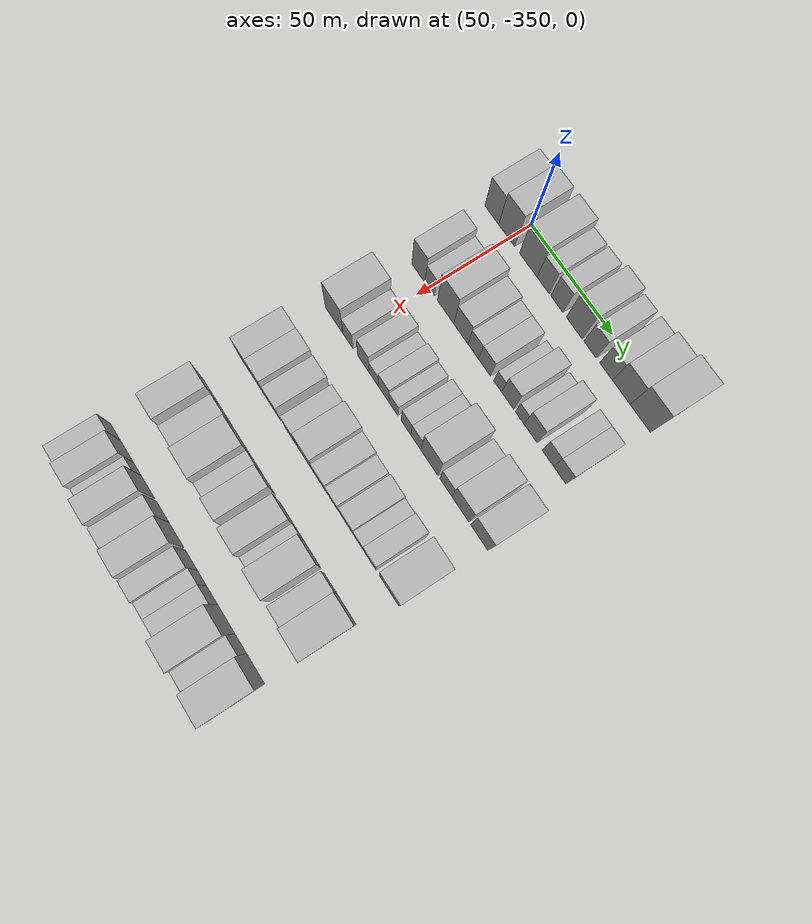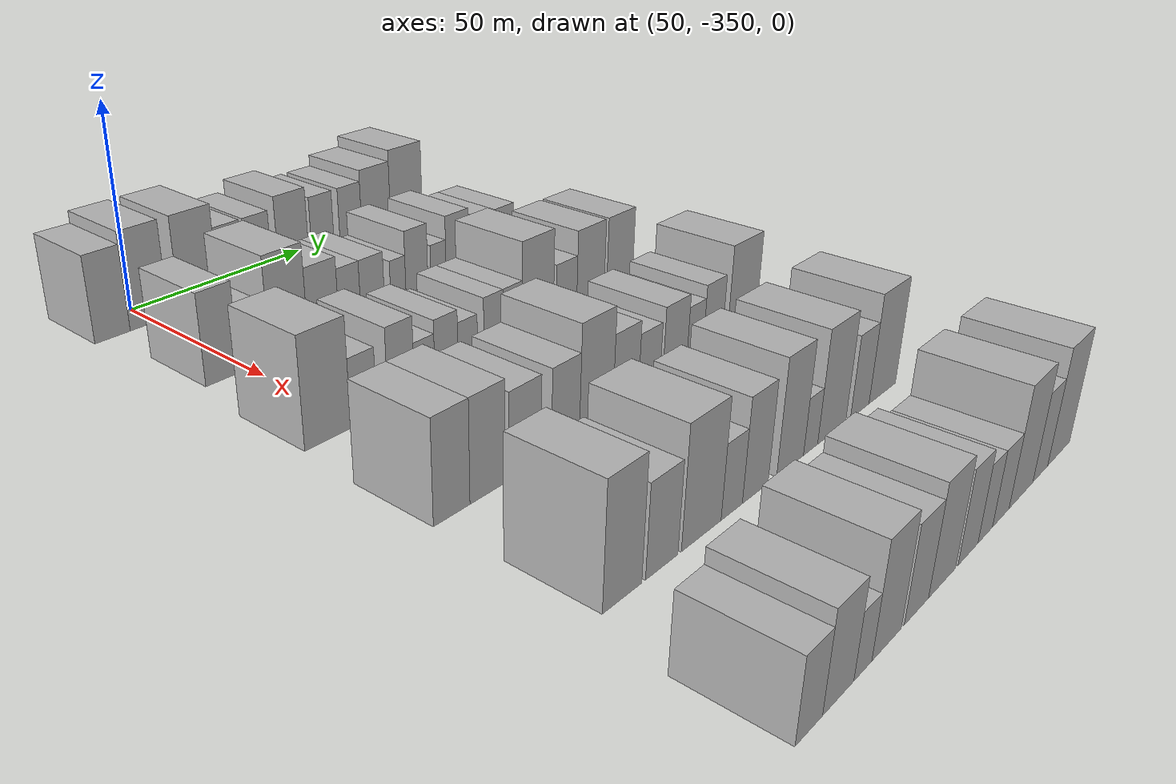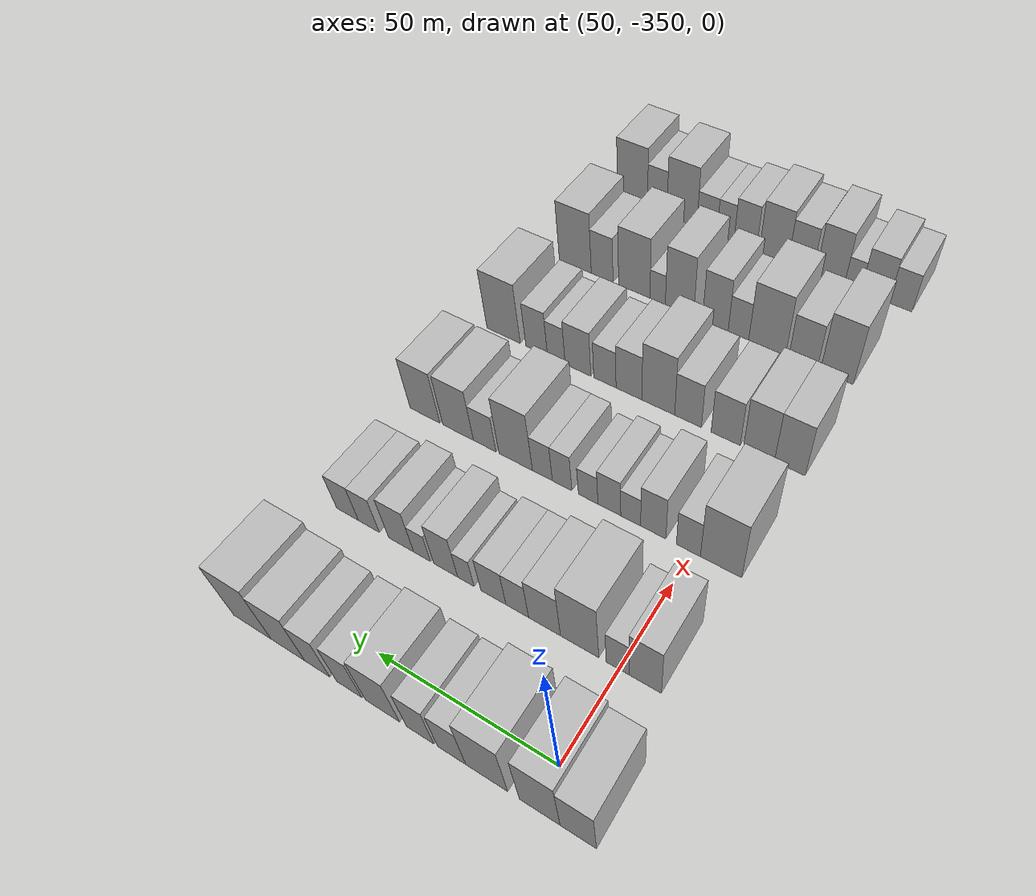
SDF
<sdf version="1.6">
 <world name="default">
  <model name="building_20">
   <static>1</static>
   <pose>50.0000 -361.0315 0 0.000000 0.000000 0.000000</pose>
   <link name="link">
    <pose>0 0 10.50 0 0 0</pose>
    <collision name="collision"><geometry><box><size>20.0000 8.8755 21.0000</size></box></geometry></collision>
    <visual name="visual">
     <cast_shadows>0</cast_shadows>
     <geometry><box><size>20.0000 8.8755 21.0000</size></box></geometry>
     <material>
      <script>
       <uri>model://HANNAS_wall/materials/scripts</uri>
       <uri>model://HANNAS_wall/materials/textures</uri>
       <name>vrc/HANNAS_wall</name>
      </script>
     </material>
    </visual>
   </link>
  </model>
  <model name="building_21">
   <static>1</static>
   <pose>50.0000 -351.4811 0 0.000000 0.000000 0.000000</pose>
   <link name="link">
    <pose>0 0 12.00 0 0 0</pose>
    <collision name="collision"><geometry><box><size>20.0000 10.2253 24.0000</size></box></geometry></collision>
    <visual name="visual">
     <cast_shadows>0</cast_shadows>
     <geometry><box><size>20.0000 10.2253 24.0000</size></box></geometry>
     <material>
      <script>
       <uri>model://HANNAS_wall/materials/scripts</uri>
       <uri>model://HANNAS_wall/materials/textures</uri>
       <name>vrc/HANNAS_wall</name>
      </script>
     </material>
    </visual>
   </link>
  </model>
  <model name="building_22">
   <static>1</static>
   <pose>50.0000 -337.8677 0 0.000000 0.000000 0.000000</pose>
   <link name="link">
    <pose>0 0 12.00 0 0 0</pose>
    <collision name="collision"><geometry><box><size>20.0000 11.0014 24.0000</size></box></geometry></collision>
    <visual name="visual">
     <cast_shadows>0</cast_shadows>
     <geometry><box><size>20.0000 11.0014 24.0000</size></box></geometry>
     <material>
      <script>
       <uri>model://HANNAS_wall/materials/scripts</uri>
       <uri>model://HANNAS_wall/materials/textures</uri>
       <name>vrc/HANNAS_wall</name>
      </script>
     </material>
    </visual>
   </link>
  </model>
  <model name="building_23">
   <static>1</static>
   <pose>50.0000 -328.5939 0 0.000000 0.000000 0.000000</pose>
   <link name="link">
    <pose>0 0 9.00 0 0 0</pose>
    <collision name="collision"><geometry><box><size>20.0000 7.5461 18.0000</size></box></geometry></collision>
    <visual name="visual">
     <cast_shadows>0</cast_shadows>
     <geometry><box><size>20.0000 7.5461 18.0000</size></box></geometry>
     <material>
      <script>
       <uri>model://HANNAS_wall/materials/scripts</uri>
       <uri>model://HANNAS_wall/materials/textures</uri>
       <name>vrc/HANNAS_wall</name>
      </script>
     </material>
    </visual>
   </link>
  </model>
  <model name="building_24">
   <static>1</static>
   <pose>50.0000 -320.0432 0 0.000000 0.000000 0.000000</pose>
   <link name="link">
    <pose>0 0 9.00 0 0 0</pose>
    <collision name="collision"><geometry><box><size>20.0000 7.5552 18.0000</size></box></geometry></collision>
    <visual name="visual">
     <cast_shadows>0</cast_shadows>
     <geometry><box><size>20.0000 7.5552 18.0000</size></box></geometry>
     <material>
      <script>
       <uri>model://HANNAS_wall/materials/scripts</uri>
       <uri>model://HANNAS_wall/materials/textures</uri>
       <name>vrc/HANNAS_wall</name>
      </script>
     </material>
    </visual>
   </link>
  </model>
  <model name="building_25">
   <static>1</static>
   <pose>50.0000 -309.4065 0 0.000000 0.000000 0.000000</pose>
   <link name="link">
    <pose>0 0 10.50 0 0 0</pose>
    <collision name="collision"><geometry><box><size>20.0000 9.7182 21.0000</size></box></geometry></collision>
    <visual name="visual">
     <cast_shadows>0</cast_shadows>
     <geometry><box><size>20.0000 9.7182 21.0000</size></box></geometry>
     <material>
      <script>
       <uri>model://HANNAS_wall/materials/scripts</uri>
       <uri>model://HANNAS_wall/materials/textures</uri>
       <name>vrc/HANNAS_wall</name>
      </script>
     </material>
    </visual>
   </link>
  </model>
  <model name="building_26">
   <static>1</static>
   <pose>50.0000 -299.8369 0 0.000000 0.000000 0.000000</pose>
   <link name="link">
    <pose>0 0 9.00 0 0 0</pose>
    <collision name="collision"><geometry><box><size>20.0000 7.4212 18.0000</size></box></geometry></collision>
    <visual name="visual">
     <cast_shadows>0</cast_shadows>
     <geometry><box><size>20.0000 7.4212 18.0000</size></box></geometry>
     <material>
      <script>
       <uri>model://HANNAS_wall/materials/scripts</uri>
       <uri>model://HANNAS_wall/materials/textures</uri>
       <name>vrc/HANNAS_wall</name>
      </script>
     </material>
    </visual>
   </link>
  </model>
  <model name="building_27">
   <static>1</static>
   <pose>50.0000 -290.3127 0 0.000000 0.000000 0.000000</pose>
   <link name="link">
    <pose>0 0 9.00 0 0 0</pose>
    <collision name="collision"><geometry><box><size>20.0000 7.6271 18.0000</size></box></geometry></collision>
    <visual name="visual">
     <cast_shadows>0</cast_shadows>
     <geometry><box><size>20.0000 7.6271 18.0000</size></box></geometry>
     <material>
      <script>
       <uri>model://HANNAS_wall/materials/scripts</uri>
       <uri>model://HANNAS_wall/materials/textures</uri>
       <name>vrc/HANNAS_wall</name>
      </script>
     </material>
    </visual>
   </link>
  </model>
  <model name="building_28">
   <static>1</static>
   <pose>50.0000 -281.3289 0 0.000000 0.000000 0.000000</pose>
   <link name="link">
    <pose>0 0 10.50 0 0 0</pose>
    <collision name="collision"><geometry><box><size>20.0000 10.3405 21.0000</size></box></geometry></collision>
    <visual name="visual">
     <cast_shadows>0</cast_shadows>
     <geometry><box><size>20.0000 10.3405 21.0000</size></box></geometry>
     <material>
      <script>
       <uri>model://HANNAS_wall/materials/scripts</uri>
       <uri>model://HANNAS_wall/materials/textures</uri>
       <name>vrc/HANNAS_wall</name>
      </script>
     </material>
    </visual>
   </link>
  </model>
  <model name="building_29">
   <static>1</static>
   <pose>50.0000 -270.2084 0 0.000000 0.000000 0.000000</pose>
   <link name="link">
    <pose>0 0 12.00 0 0 0</pose>
    <collision name="collision"><geometry><box><size>20.0000 11.9004 24.0000</size></box></geometry></collision>
    <visual name="visual">
     <cast_shadows>0</cast_shadows>
     <geometry><box><size>20.0000 11.9004 24.0000</size></box></geometry>
     <material>
      <script>
       <uri>model://HANNAS_wall/materials/scripts</uri>
       <uri>model://HANNAS_wall/materials/textures</uri>
       <name>vrc/HANNAS_wall</name>
      </script>
     </material>
    </visual>
   </link>
  </model>
  <model name="building_142">
   <static>1</static>
   <pose>85.0000 -356.7018 0 0.000000 0.000000 0.000000</pose>
   <link name="link">
    <pose>0 0 10.50 0 0 0</pose>
    <collision name="collision"><geometry><box><size>20.0000 8.4702 21.0000</size></box></geometry></collision>
    <visual name="visual">
     <cast_shadows>0</cast_shadows>
     <geometry><box><size>20.0000 8.4702 21.0000</size></box></geometry>
     <material>
      <script>
       <uri>model://HANNAS_wall/materials/scripts</uri>
       <uri>model://HANNAS_wall/materials/textures</uri>
       <name>vrc/HANNAS_wall</name>
      </script>
     </material>
    </visual>
   </link>
  </model>
  <model name="building_143">
   <static>1</static>
   <pose>85.0000 -349.4256 0 0.000000 0.000000 0.000000</pose>
   <link name="link">
    <pose>0 0 7.50 0 0 0</pose>
    <collision name="collision"><geometry><box><size>20.0000 6.0821 15.0000</size></box></geometry></collision>
    <visual name="visual">
     <cast_shadows>0</cast_shadows>
     <geometry><box><size>20.0000 6.0821 15.0000</size></box></geometry>
     <material>
      <script>
       <uri>model://HANNAS_wall/materials/scripts</uri>
       <uri>model://HANNAS_wall/materials/textures</uri>
       <name>vrc/HANNAS_wall</name>
      </script>
     </material>
    </visual>
   </link>
  </model>
  <model name="building_144">
   <static>1</static>
   <pose>85.0000 -339.1189 0 0.000000 0.000000 0.000000</pose>
   <link name="link">
    <pose>0 0 12.00 0 0 0</pose>
    <collision name="collision"><geometry><box><size>20.0000 10.5313 24.0000</size></box></geometry></collision>
    <visual name="visual">
     <cast_shadows>0</cast_shadows>
     <geometry><box><size>20.0000 10.5313 24.0000</size></box></geometry>
     <material>
      <script>
       <uri>model://HANNAS_wall/materials/scripts</uri>
       <uri>model://HANNAS_wall/materials/textures</uri>
       <name>vrc/HANNAS_wall</name>
      </script>
     </material>
    </visual>
   </link>
  </model>
  <model name="building_145">
   <static>1</static>
   <pose>85.0000 -329.3555 0 0.000000 0.000000 0.000000</pose>
   <link name="link">
    <pose>0 0 9.00 0 0 0</pose>
    <collision name="collision"><geometry><box><size>20.0000 8.9957 18.0000</size></box></geometry></collision>
    <visual name="visual">
     <cast_shadows>0</cast_shadows>
     <geometry><box><size>20.0000 8.9957 18.0000</size></box></geometry>
     <material>
      <script>
       <uri>model://HANNAS_wall/materials/scripts</uri>
       <uri>model://HANNAS_wall/materials/textures</uri>
       <name>vrc/HANNAS_wall</name>
      </script>
     </material>
    </visual>
   </link>
  </model>
  <model name="building_146">
   <static>1</static>
   <pose>85.0000 -321.5730 0 0.000000 0.000000 0.000000</pose>
   <link name="link">
    <pose>0 0 7.50 0 0 0</pose>
    <collision name="collision"><geometry><box><size>20.0000 6.5692 15.0000</size></box></geometry></collision>
    <visual name="visual">
     <cast_shadows>0</cast_shadows>
     <geometry><box><size>20.0000 6.5692 15.0000</size></box></geometry>
     <material>
      <script>
       <uri>model://HANNAS_wall/materials/scripts</uri>
       <uri>model://HANNAS_wall/materials/textures</uri>
       <name>vrc/HANNAS_wall</name>
      </script>
     </material>
    </visual>
   </link>
  </model>
  <model name="building_147">
   <static>1</static>
   <pose>85.0000 -314.5998 0 0.000000 0.000000 0.000000</pose>
   <link name="link">
    <pose>0 0 7.50 0 0 0</pose>
    <collision name="collision"><geometry><box><size>20.0000 7.3772 15.0000</size></box></geometry></collision>
    <visual name="visual">
     <cast_shadows>0</cast_shadows>
     <geometry><box><size>20.0000 7.3772 15.0000</size></box></geometry>
     <material>
      <script>
       <uri>model://HANNAS_wall/materials/scripts</uri>
       <uri>model://HANNAS_wall/materials/textures</uri>
       <name>vrc/HANNAS_wall</name>
      </script>
     </material>
    </visual>
   </link>
  </model>
  <model name="building_148">
   <static>1</static>
   <pose>85.0000 -306.4598 0 0.000000 0.000000 0.000000</pose>
   <link name="link">
    <pose>0 0 6.00 0 0 0</pose>
    <collision name="collision"><geometry><box><size>20.0000 4.9028 12.0000</size></box></geometry></collision>
    <visual name="visual">
     <cast_shadows>0</cast_shadows>
     <geometry><box><size>20.0000 4.9028 12.0000</size></box></geometry>
     <material>
      <script>
       <uri>model://HANNAS_wall/materials/scripts</uri>
       <uri>model://HANNAS_wall/materials/textures</uri>
       <name>vrc/HANNAS_wall</name>
      </script>
     </material>
    </visual>
   </link>
  </model>
  <model name="building_149">
   <static>1</static>
   <pose>85.0000 -300.3460 0 0.000000 0.000000 0.000000</pose>
   <link name="link">
    <pose>0 0 9.00 0 0 0</pose>
    <collision name="collision"><geometry><box><size>20.0000 7.3248 18.0000</size></box></geometry></collision>
    <visual name="visual">
     <cast_shadows>0</cast_shadows>
     <geometry><box><size>20.0000 7.3248 18.0000</size></box></geometry>
     <material>
      <script>
       <uri>model://HANNAS_wall/materials/scripts</uri>
       <uri>model://HANNAS_wall/materials/textures</uri>
       <name>vrc/HANNAS_wall</name>
      </script>
     </material>
    </visual>
   </link>
  </model>
  <model name="building_150">
   <static>1</static>
   <pose>85.0000 -293.0568 0 0.000000 0.000000 0.000000</pose>
   <link name="link">
    <pose>0 0 6.00 0 0 0</pose>
    <collision name="collision"><geometry><box><size>20.0000 5.2536 12.0000</size></box></geometry></collision>
    <visual name="visual">
     <cast_shadows>0</cast_shadows>
     <geometry><box><size>20.0000 5.2536 12.0000</size></box></geometry>
     <material>
      <script>
       <uri>model://HANNAS_wall/materials/scripts</uri>
       <uri>model://HANNAS_wall/materials/textures</uri>
       <name>vrc/HANNAS_wall</name>
      </script>
     </material>
    </visual>
   </link>
  </model>
  <model name="building_151">
   <static>1</static>
   <pose>85.0000 -286.4753 0 0.000000 0.000000 0.000000</pose>
   <link name="link">
    <pose>0 0 9.00 0 0 0</pose>
    <collision name="collision"><geometry><box><size>20.0000 7.9094 18.0000</size></box></geometry></collision>
    <visual name="visual">
     <cast_shadows>0</cast_shadows>
     <geometry><box><size>20.0000 7.9094 18.0000</size></box></geometry>
     <material>
      <script>
       <uri>model://HANNAS_wall/materials/scripts</uri>
       <uri>model://HANNAS_wall/materials/textures</uri>
       <name>vrc/HANNAS_wall</name>
      </script>
     </material>
    </visual>
   </link>
  </model>
  <model name="building_152">
   <static>1</static>
   <pose>85.0000 -276.1182 0 0.000000 0.000000 0.000000</pose>
   <link name="link">
    <pose>0 0 7.50 0 0 0</pose>
    <collision name="collision"><geometry><box><size>20.0000 6.8048 15.0000</size></box></geometry></collision>
    <visual name="visual">
     <cast_shadows>0</cast_shadows>
     <geometry><box><size>20.0000 6.8048 15.0000</size></box></geometry>
     <material>
      <script>
       <uri>model://HANNAS_wall/materials/scripts</uri>
       <uri>model://HANNAS_wall/materials/textures</uri>
       <name>vrc/HANNAS_wall</name>
      </script>
     </material>
    </visual>
   </link>
  </model>
  <model name="building_153">
   <static>1</static>
   <pose>85.0000 -269.1102 0 0.000000 0.000000 0.000000</pose>
   <link name="link">
    <pose>0 0 7.50 0 0 0</pose>
    <collision name="collision"><geometry><box><size>20.0000 7.2112 15.0000</size></box></geometry></collision>
    <visual name="visual">
     <cast_shadows>0</cast_shadows>
     <geometry><box><size>20.0000 7.2112 15.0000</size></box></geometry>
     <material>
      <script>
       <uri>model://HANNAS_wall/materials/scripts</uri>
       <uri>model://HANNAS_wall/materials/textures</uri>
       <name>vrc/HANNAS_wall</name>
      </script>
     </material>
    </visual>
   </link>
  </model>
  <model name="building_267">
   <static>1</static>
   <pose>120.0000 -357.9546 0 0.000000 0.000000 0.000000</pose>
   <link name="link">
    <pose>0 0 12.00 0 0 0</pose>
    <collision name="collision"><geometry><box><size>20.0000 11.3901 24.0000</size></box></geometry></collision>
    <visual name="visual">
     <cast_shadows>0</cast_shadows>
     <geometry><box><size>20.0000 11.3901 24.0000</size></box></geometry>
     <material>
      <script>
       <uri>model://HANNAS_wall/materials/scripts</uri>
       <uri>model://HANNAS_wall/materials/textures</uri>
       <name>vrc/HANNAS_wall</name>
      </script>
     </material>
    </visual>
   </link>
  </model>
  <model name="building_268">
   <static>1</static>
   <pose>120.0000 -348.8794 0 0.000000 0.000000 0.000000</pose>
   <link name="link">
    <pose>0 0 7.50 0 0 0</pose>
    <collision name="collision"><geometry><box><size>20.0000 6.7604 15.0000</size></box></geometry></collision>
    <visual name="visual">
     <cast_shadows>0</cast_shadows>
     <geometry><box><size>20.0000 6.7604 15.0000</size></box></geometry>
     <material>
      <script>
       <uri>model://HANNAS_wall/materials/scripts</uri>
       <uri>model://HANNAS_wall/materials/textures</uri>
       <name>vrc/HANNAS_wall</name>
      </script>
     </material>
    </visual>
   </link>
  </model>
  <model name="building_269">
   <static>1</static>
   <pose>120.0000 -338.8439 0 0.000000 0.000000 0.000000</pose>
   <link name="link">
    <pose>0 0 9.00 0 0 0</pose>
    <collision name="collision"><geometry><box><size>20.0000 7.3104 18.0000</size></box></geometry></collision>
    <visual name="visual">
     <cast_shadows>0</cast_shadows>
     <geometry><box><size>20.0000 7.3104 18.0000</size></box></geometry>
     <material>
      <script>
       <uri>model://HANNAS_wall/materials/scripts</uri>
       <uri>model://HANNAS_wall/materials/textures</uri>
       <name>vrc/HANNAS_wall</name>
      </script>
     </material>
    </visual>
   </link>
  </model>
  <model name="building_270">
   <static>1</static>
   <pose>120.0000 -332.2670 0 0.000000 0.000000 0.000000</pose>
   <link name="link">
    <pose>0 0 6.00 0 0 0</pose>
    <collision name="collision"><geometry><box><size>20.0000 5.8434 12.0000</size></box></geometry></collision>
    <visual name="visual">
     <cast_shadows>0</cast_shadows>
     <geometry><box><size>20.0000 5.8434 12.0000</size></box></geometry>
     <material>
      <script>
       <uri>model://HANNAS_wall/materials/scripts</uri>
       <uri>model://HANNAS_wall/materials/textures</uri>
       <name>vrc/HANNAS_wall</name>
      </script>
     </material>
    </visual>
   </link>
  </model>
  <model name="building_271">
   <static>1</static>
   <pose>120.0000 -325.9289 0 0.000000 0.000000 0.000000</pose>
   <link name="link">
    <pose>0 0 7.50 0 0 0</pose>
    <collision name="collision"><geometry><box><size>20.0000 6.8329 15.0000</size></box></geometry></collision>
    <visual name="visual">
     <cast_shadows>0</cast_shadows>
     <geometry><box><size>20.0000 6.8329 15.0000</size></box></geometry>
     <material>
      <script>
       <uri>model://HANNAS_wall/materials/scripts</uri>
       <uri>model://HANNAS_wall/materials/textures</uri>
       <name>vrc/HANNAS_wall</name>
      </script>
     </material>
    </visual>
   </link>
  </model>
  <model name="building_272">
   <static>1</static>
   <pose>120.0000 -319.5433 0 0.000000 0.000000 0.000000</pose>
   <link name="link">
    <pose>0 0 6.00 0 0 0</pose>
    <collision name="collision"><geometry><box><size>20.0000 5.9383 12.0000</size></box></geometry></collision>
    <visual name="visual">
     <cast_shadows>0</cast_shadows>
     <geometry><box><size>20.0000 5.9383 12.0000</size></box></geometry>
     <material>
      <script>
       <uri>model://HANNAS_wall/materials/scripts</uri>
       <uri>model://HANNAS_wall/materials/textures</uri>
       <name>vrc/HANNAS_wall</name>
      </script>
     </material>
    </visual>
   </link>
  </model>
  <model name="building_273">
   <static>1</static>
   <pose>120.0000 -311.5369 0 0.000000 0.000000 0.000000</pose>
   <link name="link">
    <pose>0 0 7.50 0 0 0</pose>
    <collision name="collision"><geometry><box><size>20.0000 6.0744 15.0000</size></box></geometry></collision>
    <visual name="visual">
     <cast_shadows>0</cast_shadows>
     <geometry><box><size>20.0000 6.0744 15.0000</size></box></geometry>
     <material>
      <script>
       <uri>model://HANNAS_wall/materials/scripts</uri>
       <uri>model://HANNAS_wall/materials/textures</uri>
       <name>vrc/HANNAS_wall</name>
      </script>
     </material>
    </visual>
   </link>
  </model>
  <model name="building_274">
   <static>1</static>
   <pose>120.0000 -305.3656 0 0.000000 0.000000 0.000000</pose>
   <link name="link">
    <pose>0 0 7.50 0 0 0</pose>
    <collision name="collision"><geometry><box><size>20.0000 6.2682 15.0000</size></box></geometry></collision>
    <visual name="visual">
     <cast_shadows>0</cast_shadows>
     <geometry><box><size>20.0000 6.2682 15.0000</size></box></geometry>
     <material>
      <script>
       <uri>model://HANNAS_wall/materials/scripts</uri>
       <uri>model://HANNAS_wall/materials/textures</uri>
       <name>vrc/HANNAS_wall</name>
      </script>
     </material>
    </visual>
   </link>
  </model>
  <model name="building_275">
   <static>1</static>
   <pose>120.0000 -296.8449 0 0.000000 0.000000 0.000000</pose>
   <link name="link">
    <pose>0 0 12.00 0 0 0</pose>
    <collision name="collision"><geometry><box><size>20.0000 10.7731 24.0000</size></box></geometry></collision>
    <visual name="visual">
     <cast_shadows>0</cast_shadows>
     <geometry><box><size>20.0000 10.7731 24.0000</size></box></geometry>
     <material>
      <script>
       <uri>model://HANNAS_wall/materials/scripts</uri>
       <uri>model://HANNAS_wall/materials/textures</uri>
       <name>vrc/HANNAS_wall</name>
      </script>
     </material>
    </visual>
   </link>
  </model>
  <model name="building_276">
   <static>1</static>
   <pose>120.0000 -286.7524 0 0.000000 0.000000 0.000000</pose>
   <link name="link">
    <pose>0 0 7.50 0 0 0</pose>
    <collision name="collision"><geometry><box><size>20.0000 7.4118 15.0000</size></box></geometry></collision>
    <visual name="visual">
     <cast_shadows>0</cast_shadows>
     <geometry><box><size>20.0000 7.4118 15.0000</size></box></geometry>
     <material>
      <script>
       <uri>model://HANNAS_wall/materials/scripts</uri>
       <uri>model://HANNAS_wall/materials/textures</uri>
       <name>vrc/HANNAS_wall</name>
      </script>
     </material>
    </visual>
   </link>
  </model>
  <model name="building_277">
   <static>1</static>
   <pose>120.0000 -277.8801 0 0.000000 0.000000 0.000000</pose>
   <link name="link">
    <pose>0 0 10.50 0 0 0</pose>
    <collision name="collision"><geometry><box><size>20.0000 10.3328 21.0000</size></box></geometry></collision>
    <visual name="visual">
     <cast_shadows>0</cast_shadows>
     <geometry><box><size>20.0000 10.3328 21.0000</size></box></geometry>
     <material>
      <script>
       <uri>model://HANNAS_wall/materials/scripts</uri>
       <uri>model://HANNAS_wall/materials/textures</uri>
       <name>vrc/HANNAS_wall</name>
      </script>
     </material>
    </visual>
   </link>
  </model>
  <model name="building_278">
   <static>1</static>
   <pose>120.0000 -266.5598 0 0.000000 0.000000 0.000000</pose>
   <link name="link">
    <pose>0 0 10.50 0 0 0</pose>
    <collision name="collision"><geometry><box><size>20.0000 10.3079 21.0000</size></box></geometry></collision>
    <visual name="visual">
     <cast_shadows>0</cast_shadows>
     <geometry><box><size>20.0000 10.3079 21.0000</size></box></geometry>
     <material>
      <script>
       <uri>model://HANNAS_wall/materials/scripts</uri>
       <uri>model://HANNAS_wall/materials/textures</uri>
       <name>vrc/HANNAS_wall</name>
      </script>
     </material>
    </visual>
   </link>
  </model>
  <model name="building_387">
   <static>1</static>
   <pose>155.0000 -360.3301 0 0.000000 0.000000 0.000000</pose>
   <link name="link">
    <pose>0 0 10.50 0 0 0</pose>
    <collision name="collision"><geometry><box><size>20.0000 8.9215 21.0000</size></box></geometry></collision>
    <visual name="visual">
     <cast_shadows>0</cast_shadows>
     <geometry><box><size>20.0000 8.9215 21.0000</size></box></geometry>
     <material>
      <script>
       <uri>model://HANNAS_wall/materials/scripts</uri>
       <uri>model://HANNAS_wall/materials/textures</uri>
       <name>vrc/HANNAS_wall</name>
      </script>
     </material>
    </visual>
   </link>
  </model>
  <model name="building_388">
   <static>1</static>
   <pose>155.0000 -351.3182 0 0.000000 0.000000 0.000000</pose>
   <link name="link">
    <pose>0 0 10.50 0 0 0</pose>
    <collision name="collision"><geometry><box><size>20.0000 9.1024 21.0000</size></box></geometry></collision>
    <visual name="visual">
     <cast_shadows>0</cast_shadows>
     <geometry><box><size>20.0000 9.1024 21.0000</size></box></geometry>
     <material>
      <script>
       <uri>model://HANNAS_wall/materials/scripts</uri>
       <uri>model://HANNAS_wall/materials/textures</uri>
       <name>vrc/HANNAS_wall</name>
      </script>
     </material>
    </visual>
   </link>
  </model>
  <model name="building_389">
   <static>1</static>
   <pose>155.0000 -341.3673 0 0.000000 0.000000 0.000000</pose>
   <link name="link">
    <pose>0 0 9.00 0 0 0</pose>
    <collision name="collision"><geometry><box><size>20.0000 8.7994 18.0000</size></box></geometry></collision>
    <visual name="visual">
     <cast_shadows>0</cast_shadows>
     <geometry><box><size>20.0000 8.7994 18.0000</size></box></geometry>
     <material>
      <script>
       <uri>model://HANNAS_wall/materials/scripts</uri>
       <uri>model://HANNAS_wall/materials/textures</uri>
       <name>vrc/HANNAS_wall</name>
      </script>
     </material>
    </visual>
   </link>
  </model>
  <model name="building_390">
   <static>1</static>
   <pose>155.0000 -329.8161 0 0.000000 0.000000 0.000000</pose>
   <link name="link">
    <pose>0 0 9.00 0 0 0</pose>
    <collision name="collision"><geometry><box><size>20.0000 8.3032 18.0000</size></box></geometry></collision>
    <visual name="visual">
     <cast_shadows>0</cast_shadows>
     <geometry><box><size>20.0000 8.3032 18.0000</size></box></geometry>
     <material>
      <script>
       <uri>model://HANNAS_wall/materials/scripts</uri>
       <uri>model://HANNAS_wall/materials/textures</uri>
       <name>vrc/HANNAS_wall</name>
      </script>
     </material>
    </visual>
   </link>
  </model>
  <model name="building_391">
   <static>1</static>
   <pose>155.0000 -320.4596 0 0.000000 0.000000 0.000000</pose>
   <link name="link">
    <pose>0 0 12.00 0 0 0</pose>
    <collision name="collision"><geometry><box><size>20.0000 10.4098 24.0000</size></box></geometry></collision>
    <visual name="visual">
     <cast_shadows>0</cast_shadows>
     <geometry><box><size>20.0000 10.4098 24.0000</size></box></geometry>
     <material>
      <script>
       <uri>model://HANNAS_wall/materials/scripts</uri>
       <uri>model://HANNAS_wall/materials/textures</uri>
       <name>vrc/HANNAS_wall</name>
      </script>
     </material>
    </visual>
   </link>
  </model>
  <model name="building_392">
   <static>1</static>
   <pose>155.0000 -311.0479 0 0.000000 0.000000 0.000000</pose>
   <link name="link">
    <pose>0 0 9.00 0 0 0</pose>
    <collision name="collision"><geometry><box><size>20.0000 8.4136 18.0000</size></box></geometry></collision>
    <visual name="visual">
     <cast_shadows>0</cast_shadows>
     <geometry><box><size>20.0000 8.4136 18.0000</size></box></geometry>
     <material>
      <script>
       <uri>model://HANNAS_wall/materials/scripts</uri>
       <uri>model://HANNAS_wall/materials/textures</uri>
       <name>vrc/HANNAS_wall</name>
      </script>
     </material>
    </visual>
   </link>
  </model>
  <model name="building_393">
   <static>1</static>
   <pose>155.0000 -303.1639 0 0.000000 0.000000 0.000000</pose>
   <link name="link">
    <pose>0 0 7.50 0 0 0</pose>
    <collision name="collision"><geometry><box><size>20.0000 7.3544 15.0000</size></box></geometry></collision>
    <visual name="visual">
     <cast_shadows>0</cast_shadows>
     <geometry><box><size>20.0000 7.3544 15.0000</size></box></geometry>
     <material>
      <script>
       <uri>model://HANNAS_wall/materials/scripts</uri>
       <uri>model://HANNAS_wall/materials/textures</uri>
       <name>vrc/HANNAS_wall</name>
      </script>
     </material>
    </visual>
   </link>
  </model>
  <model name="building_394">
   <static>1</static>
   <pose>155.0000 -294.1479 0 0.000000 0.000000 0.000000</pose>
   <link name="link">
    <pose>0 0 9.00 0 0 0</pose>
    <collision name="collision"><geometry><box><size>20.0000 8.6775 18.0000</size></box></geometry></collision>
    <visual name="visual">
     <cast_shadows>0</cast_shadows>
     <geometry><box><size>20.0000 8.6775 18.0000</size></box></geometry>
     <material>
      <script>
       <uri>model://HANNAS_wall/materials/scripts</uri>
       <uri>model://HANNAS_wall/materials/textures</uri>
       <name>vrc/HANNAS_wall</name>
      </script>
     </material>
    </visual>
   </link>
  </model>
  <model name="building_395">
   <static>1</static>
   <pose>155.0000 -286.7715 0 0.000000 0.000000 0.000000</pose>
   <link name="link">
    <pose>0 0 7.50 0 0 0</pose>
    <collision name="collision"><geometry><box><size>20.0000 6.0752 15.0000</size></box></geometry></collision>
    <visual name="visual">
     <cast_shadows>0</cast_shadows>
     <geometry><box><size>20.0000 6.0752 15.0000</size></box></geometry>
     <material>
      <script>
       <uri>model://HANNAS_wall/materials/scripts</uri>
       <uri>model://HANNAS_wall/materials/textures</uri>
       <name>vrc/HANNAS_wall</name>
      </script>
     </material>
    </visual>
   </link>
  </model>
  <model name="building_396">
   <static>1</static>
   <pose>155.0000 -279.9626 0 0.000000 0.000000 0.000000</pose>
   <link name="link">
    <pose>0 0 9.00 0 0 0</pose>
    <collision name="collision"><geometry><box><size>20.0000 7.5426 18.0000</size></box></geometry></collision>
    <visual name="visual">
     <cast_shadows>0</cast_shadows>
     <geometry><box><size>20.0000 7.5426 18.0000</size></box></geometry>
     <material>
      <script>
       <uri>model://HANNAS_wall/materials/scripts</uri>
       <uri>model://HANNAS_wall/materials/textures</uri>
       <name>vrc/HANNAS_wall</name>
      </script>
     </material>
    </visual>
   </link>
  </model>
  <model name="building_397">
   <static>1</static>
   <pose>155.0000 -268.2379 0 0.000000 0.000000 0.000000</pose>
   <link name="link">
    <pose>0 0 12.00 0 0 0</pose>
    <collision name="collision"><geometry><box><size>20.0000 11.9066 24.0000</size></box></geometry></collision>
    <visual name="visual">
     <cast_shadows>0</cast_shadows>
     <geometry><box><size>20.0000 11.9066 24.0000</size></box></geometry>
     <material>
      <script>
       <uri>model://HANNAS_wall/materials/scripts</uri>
       <uri>model://HANNAS_wall/materials/textures</uri>
       <name>vrc/HANNAS_wall</name>
      </script>
     </material>
    </visual>
   </link>
  </model>
  <model name="building_511">
   <static>1</static>
   <pose>190.0000 -358.8187 0 0.000000 0.000000 0.000000</pose>
   <link name="link">
    <pose>0 0 12.00 0 0 0</pose>
    <collision name="collision"><geometry><box><size>20.0000 10.0465 24.0000</size></box></geometry></collision>
    <visual name="visual">
     <cast_shadows>0</cast_shadows>
     <geometry><box><size>20.0000 10.0465 24.0000</size></box></geometry>
     <material>
      <script>
       <uri>model://HANNAS_wall/materials/scripts</uri>
       <uri>model://HANNAS_wall/materials/textures</uri>
       <name>vrc/HANNAS_wall</name>
      </script>
     </material>
    </visual>
   </link>
  </model>
  <model name="building_512">
   <static>1</static>
   <pose>190.0000 -348.3422 0 0.000000 0.000000 0.000000</pose>
   <link name="link">
    <pose>0 0 9.00 0 0 0</pose>
    <collision name="collision"><geometry><box><size>20.0000 8.9065 18.0000</size></box></geometry></collision>
    <visual name="visual">
     <cast_shadows>0</cast_shadows>
     <geometry><box><size>20.0000 8.9065 18.0000</size></box></geometry>
     <material>
      <script>
       <uri>model://HANNAS_wall/materials/scripts</uri>
       <uri>model://HANNAS_wall/materials/textures</uri>
       <name>vrc/HANNAS_wall</name>
      </script>
     </material>
    </visual>
   </link>
  </model>
  <model name="building_513">
   <static>1</static>
   <pose>190.0000 -336.9763 0 0.000000 0.000000 0.000000</pose>
   <link name="link">
    <pose>0 0 12.00 0 0 0</pose>
    <collision name="collision"><geometry><box><size>20.0000 11.8254 24.0000</size></box></geometry></collision>
    <visual name="visual">
     <cast_shadows>0</cast_shadows>
     <geometry><box><size>20.0000 11.8254 24.0000</size></box></geometry>
     <material>
      <script>
       <uri>model://HANNAS_wall/materials/scripts</uri>
       <uri>model://HANNAS_wall/materials/textures</uri>
       <name>vrc/HANNAS_wall</name>
      </script>
     </material>
    </visual>
   </link>
  </model>
  <model name="building_514">
   <static>1</static>
   <pose>190.0000 -327.6918 0 0.000000 0.000000 0.000000</pose>
   <link name="link">
    <pose>0 0 7.50 0 0 0</pose>
    <collision name="collision"><geometry><box><size>20.0000 6.7437 15.0000</size></box></geometry></collision>
    <visual name="visual">
     <cast_shadows>0</cast_shadows>
     <geometry><box><size>20.0000 6.7437 15.0000</size></box></geometry>
     <material>
      <script>
       <uri>model://HANNAS_wall/materials/scripts</uri>
       <uri>model://HANNAS_wall/materials/textures</uri>
       <name>vrc/HANNAS_wall</name>
      </script>
     </material>
    </visual>
   </link>
  </model>
  <model name="building_515">
   <static>1</static>
   <pose>190.0000 -320.0452 0 0.000000 0.000000 0.000000</pose>
   <link name="link">
    <pose>0 0 10.50 0 0 0</pose>
    <collision name="collision"><geometry><box><size>20.0000 8.5494 21.0000</size></box></geometry></collision>
    <visual name="visual">
     <cast_shadows>0</cast_shadows>
     <geometry><box><size>20.0000 8.5494 21.0000</size></box></geometry>
     <material>
      <script>
       <uri>model://HANNAS_wall/materials/scripts</uri>
       <uri>model://HANNAS_wall/materials/textures</uri>
       <name>vrc/HANNAS_wall</name>
      </script>
     </material>
    </visual>
   </link>
  </model>
  <model name="building_516">
   <static>1</static>
   <pose>190.0000 -307.9288 0 0.000000 0.000000 0.000000</pose>
   <link name="link">
    <pose>0 0 12.00 0 0 0</pose>
    <collision name="collision"><geometry><box><size>20.0000 9.6834 24.0000</size></box></geometry></collision>
    <visual name="visual">
     <cast_shadows>0</cast_shadows>
     <geometry><box><size>20.0000 9.6834 24.0000</size></box></geometry>
     <material>
      <script>
       <uri>model://HANNAS_wall/materials/scripts</uri>
       <uri>model://HANNAS_wall/materials/textures</uri>
       <name>vrc/HANNAS_wall</name>
      </script>
     </material>
    </visual>
   </link>
  </model>
  <model name="building_517">
   <static>1</static>
   <pose>190.0000 -300.4158 0 0.000000 0.000000 0.000000</pose>
   <link name="link">
    <pose>0 0 6.00 0 0 0</pose>
    <collision name="collision"><geometry><box><size>20.0000 5.3426 12.0000</size></box></geometry></collision>
    <visual name="visual">
     <cast_shadows>0</cast_shadows>
     <geometry><box><size>20.0000 5.3426 12.0000</size></box></geometry>
     <material>
      <script>
       <uri>model://HANNAS_wall/materials/scripts</uri>
       <uri>model://HANNAS_wall/materials/textures</uri>
       <name>vrc/HANNAS_wall</name>
      </script>
     </material>
    </visual>
   </link>
  </model>
  <model name="building_518">
   <static>1</static>
   <pose>190.0000 -292.2043 0 0.000000 0.000000 0.000000</pose>
   <link name="link">
    <pose>0 0 12.00 0 0 0</pose>
    <collision name="collision"><geometry><box><size>20.0000 11.0804 24.0000</size></box></geometry></collision>
    <visual name="visual">
     <cast_shadows>0</cast_shadows>
     <geometry><box><size>20.0000 11.0804 24.0000</size></box></geometry>
     <material>
      <script>
       <uri>model://HANNAS_wall/materials/scripts</uri>
       <uri>model://HANNAS_wall/materials/textures</uri>
       <name>vrc/HANNAS_wall</name>
      </script>
     </material>
    </visual>
   </link>
  </model>
  <model name="building_519">
   <static>1</static>
   <pose>190.0000 -280.7232 0 0.000000 0.000000 0.000000</pose>
   <link name="link">
    <pose>0 0 9.00 0 0 0</pose>
    <collision name="collision"><geometry><box><size>20.0000 7.8818 18.0000</size></box></geometry></collision>
    <visual name="visual">
     <cast_shadows>0</cast_shadows>
     <geometry><box><size>20.0000 7.8818 18.0000</size></box></geometry>
     <material>
      <script>
       <uri>model://HANNAS_wall/materials/scripts</uri>
       <uri>model://HANNAS_wall/materials/textures</uri>
       <name>vrc/HANNAS_wall</name>
      </script>
     </material>
    </visual>
   </link>
  </model>
  <model name="building_520">
   <static>1</static>
   <pose>190.0000 -270.8734 0 0.000000 0.000000 0.000000</pose>
   <link name="link">
    <pose>0 0 12.00 0 0 0</pose>
    <collision name="collision"><geometry><box><size>20.0000 11.8179 24.0000</size></box></geometry></collision>
    <visual name="visual">
     <cast_shadows>0</cast_shadows>
     <geometry><box><size>20.0000 11.8179 24.0000</size></box></geometry>
     <material>
      <script>
       <uri>model://HANNAS_wall/materials/scripts</uri>
       <uri>model://HANNAS_wall/materials/textures</uri>
       <name>vrc/HANNAS_wall</name>
      </script>
     </material>
    </visual>
   </link>
  </model>
  <model name="building_644">
   <static>1</static>
   <pose>225.0000 -364.5598 0 0.000000 0.000000 0.000000</pose>
   <link name="link">
    <pose>0 0 7.50 0 0 0</pose>
    <collision name="collision"><geometry><box><size>20.0000 7.3490 15.0000</size></box></geometry></collision>
    <visual name="visual">
     <cast_shadows>0</cast_shadows>
     <geometry><box><size>20.0000 7.3490 15.0000</size></box></geometry>
     <material>
      <script>
       <uri>model://HANNAS_wall/materials/scripts</uri>
       <uri>model://HANNAS_wall/materials/textures</uri>
       <name>vrc/HANNAS_wall</name>
      </script>
     </material>
    </visual>
   </link>
  </model>
  <model name="building_645">
   <static>1</static>
   <pose>225.0000 -356.4016 0 0.000000 0.000000 0.000000</pose>
   <link name="link">
    <pose>0 0 9.00 0 0 0</pose>
    <collision name="collision"><geometry><box><size>20.0000 8.9673 18.0000</size></box></geometry></collision>
    <visual name="visual">
     <cast_shadows>0</cast_shadows>
     <geometry><box><size>20.0000 8.9673 18.0000</size></box></geometry>
     <material>
      <script>
       <uri>model://HANNAS_wall/materials/scripts</uri>
       <uri>model://HANNAS_wall/materials/textures</uri>
       <name>vrc/HANNAS_wall</name>
      </script>
     </material>
    </visual>
   </link>
  </model>
  <model name="building_646">
   <static>1</static>
   <pose>225.0000 -349.1893 0 0.000000 0.000000 0.000000</pose>
   <link name="link">
    <pose>0 0 6.00 0 0 0</pose>
    <collision name="collision"><geometry><box><size>20.0000 5.4573 12.0000</size></box></geometry></collision>
    <visual name="visual">
     <cast_shadows>0</cast_shadows>
     <geometry><box><size>20.0000 5.4573 12.0000</size></box></geometry>
     <material>
      <script>
       <uri>model://HANNAS_wall/materials/scripts</uri>
       <uri>model://HANNAS_wall/materials/textures</uri>
       <name>vrc/HANNAS_wall</name>
      </script>
     </material>
    </visual>
   </link>
  </model>
  <model name="building_647">
   <static>1</static>
   <pose>225.0000 -341.7278 0 0.000000 0.000000 0.000000</pose>
   <link name="link">
    <pose>0 0 10.50 0 0 0</pose>
    <collision name="collision"><geometry><box><size>20.0000 9.4657 21.0000</size></box></geometry></collision>
    <visual name="visual">
     <cast_shadows>0</cast_shadows>
     <geometry><box><size>20.0000 9.4657 21.0000</size></box></geometry>
     <material>
      <script>
       <uri>model://HANNAS_wall/materials/scripts</uri>
       <uri>model://HANNAS_wall/materials/textures</uri>
       <name>vrc/HANNAS_wall</name>
      </script>
     </material>
    </visual>
   </link>
  </model>
  <model name="building_648">
   <static>1</static>
   <pose>225.0000 -331.7716 0 0.000000 0.000000 0.000000</pose>
   <link name="link">
    <pose>0 0 9.00 0 0 0</pose>
    <collision name="collision"><geometry><box><size>20.0000 8.4467 18.0000</size></box></geometry></collision>
    <visual name="visual">
     <cast_shadows>0</cast_shadows>
     <geometry><box><size>20.0000 8.4467 18.0000</size></box></geometry>
     <material>
      <script>
       <uri>model://HANNAS_wall/materials/scripts</uri>
       <uri>model://HANNAS_wall/materials/textures</uri>
       <name>vrc/HANNAS_wall</name>
      </script>
     </material>
    </visual>
   </link>
  </model>
  <model name="building_649">
   <static>1</static>
   <pose>225.0000 -322.5360 0 0.000000 0.000000 0.000000</pose>
   <link name="link">
    <pose>0 0 10.50 0 0 0</pose>
    <collision name="collision"><geometry><box><size>20.0000 10.0243 21.0000</size></box></geometry></collision>
    <visual name="visual">
     <cast_shadows>0</cast_shadows>
     <geometry><box><size>20.0000 10.0243 21.0000</size></box></geometry>
     <material>
      <script>
       <uri>model://HANNAS_wall/materials/scripts</uri>
       <uri>model://HANNAS_wall/materials/textures</uri>
       <name>vrc/HANNAS_wall</name>
      </script>
     </material>
    </visual>
   </link>
  </model>
  <model name="building_650">
   <static>1</static>
   <pose>225.0000 -312.5473 0 0.000000 0.000000 0.000000</pose>
   <link name="link">
    <pose>0 0 9.00 0 0 0</pose>
    <collision name="collision"><geometry><box><size>20.0000 7.9531 18.0000</size></box></geometry></collision>
    <visual name="visual">
     <cast_shadows>0</cast_shadows>
     <geometry><box><size>20.0000 7.9531 18.0000</size></box></geometry>
     <material>
      <script>
       <uri>model://HANNAS_wall/materials/scripts</uri>
       <uri>model://HANNAS_wall/materials/textures</uri>
       <name>vrc/HANNAS_wall</name>
      </script>
     </material>
    </visual>
   </link>
  </model>
  <model name="building_651">
   <static>1</static>
   <pose>225.0000 -305.5125 0 0.000000 0.000000 0.000000</pose>
   <link name="link">
    <pose>0 0 7.50 0 0 0</pose>
    <collision name="collision"><geometry><box><size>20.0000 6.1165 15.0000</size></box></geometry></collision>
    <visual name="visual">
     <cast_shadows>0</cast_shadows>
     <geometry><box><size>20.0000 6.1165 15.0000</size></box></geometry>
     <material>
      <script>
       <uri>model://HANNAS_wall/materials/scripts</uri>
       <uri>model://HANNAS_wall/materials/textures</uri>
       <name>vrc/HANNAS_wall</name>
      </script>
     </material>
    </visual>
   </link>
  </model>
  <model name="building_652">
   <static>1</static>
   <pose>225.0000 -298.8051 0 0.000000 0.000000 0.000000</pose>
   <link name="link">
    <pose>0 0 7.50 0 0 0</pose>
    <collision name="collision"><geometry><box><size>20.0000 7.2984 15.0000</size></box></geometry></collision>
    <visual name="visual">
     <cast_shadows>0</cast_shadows>
     <geometry><box><size>20.0000 7.2984 15.0000</size></box></geometry>
     <material>
      <script>
       <uri>model://HANNAS_wall/materials/scripts</uri>
       <uri>model://HANNAS_wall/materials/textures</uri>
       <name>vrc/HANNAS_wall</name>
      </script>
     </material>
    </visual>
   </link>
  </model>
  <model name="building_653">
   <static>1</static>
   <pose>225.0000 -289.5917 0 0.000000 0.000000 0.000000</pose>
   <link name="link">
    <pose>0 0 12.00 0 0 0</pose>
    <collision name="collision"><geometry><box><size>20.0000 11.1285 24.0000</size></box></geometry></collision>
    <visual name="visual">
     <cast_shadows>0</cast_shadows>
     <geometry><box><size>20.0000 11.1285 24.0000</size></box></geometry>
     <material>
      <script>
       <uri>model://HANNAS_wall/materials/scripts</uri>
       <uri>model://HANNAS_wall/materials/textures</uri>
       <name>vrc/HANNAS_wall</name>
      </script>
     </material>
    </visual>
   </link>
  </model>
  <model name="building_654">
   <static>1</static>
   <pose>225.0000 -280.3775 0 0.000000 0.000000 0.000000</pose>
   <link name="link">
    <pose>0 0 9.00 0 0 0</pose>
    <collision name="collision"><geometry><box><size>20.0000 7.2998 18.0000</size></box></geometry></collision>
    <visual name="visual">
     <cast_shadows>0</cast_shadows>
     <geometry><box><size>20.0000 7.2998 18.0000</size></box></geometry>
     <material>
      <script>
       <uri>model://HANNAS_wall/materials/scripts</uri>
       <uri>model://HANNAS_wall/materials/textures</uri>
       <name>vrc/HANNAS_wall</name>
      </script>
     </material>
    </visual>
   </link>
  </model>
  <model name="building_655">
   <static>1</static>
   <pose>225.0000 -270.9643 0 0.000000 0.000000 0.000000</pose>
   <link name="link">
    <pose>0 0 12.00 0 0 0</pose>
    <collision name="collision"><geometry><box><size>20.0000 11.5266 24.0000</size></box></geometry></collision>
    <visual name="visual">
     <cast_shadows>0</cast_shadows>
     <geometry><box><size>20.0000 11.5266 24.0000</size></box></geometry>
     <material>
      <script>
       <uri>model://HANNAS_wall/materials/scripts</uri>
       <uri>model://HANNAS_wall/materials/textures</uri>
       <name>vrc/HANNAS_wall</name>
      </script>
     </material>
    </visual>
   </link>
  </model>
 </world>
</sdf>
